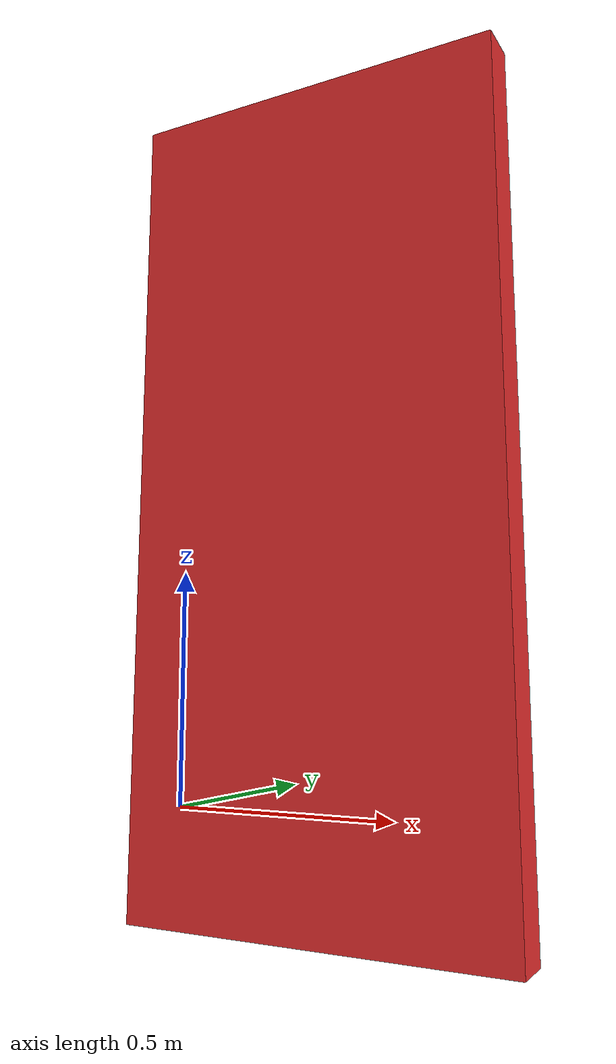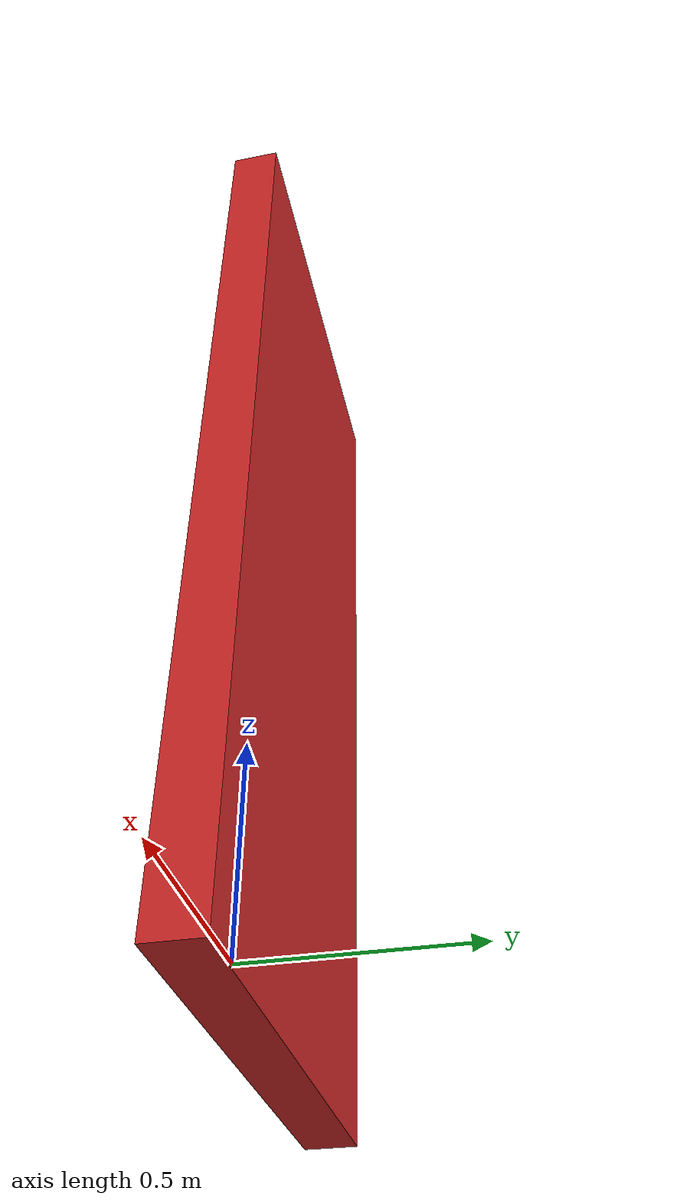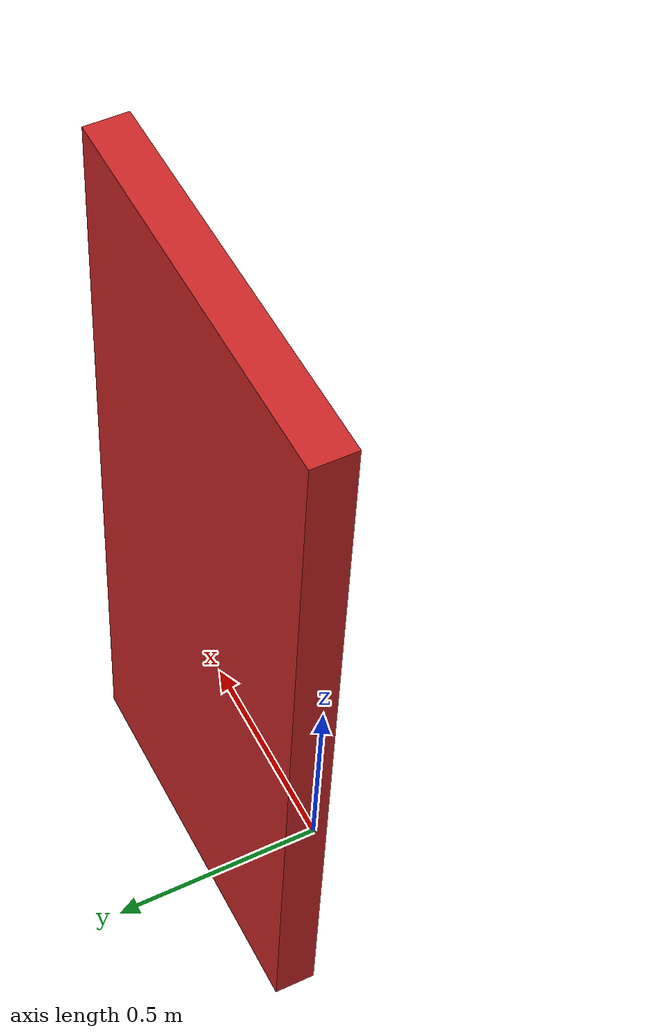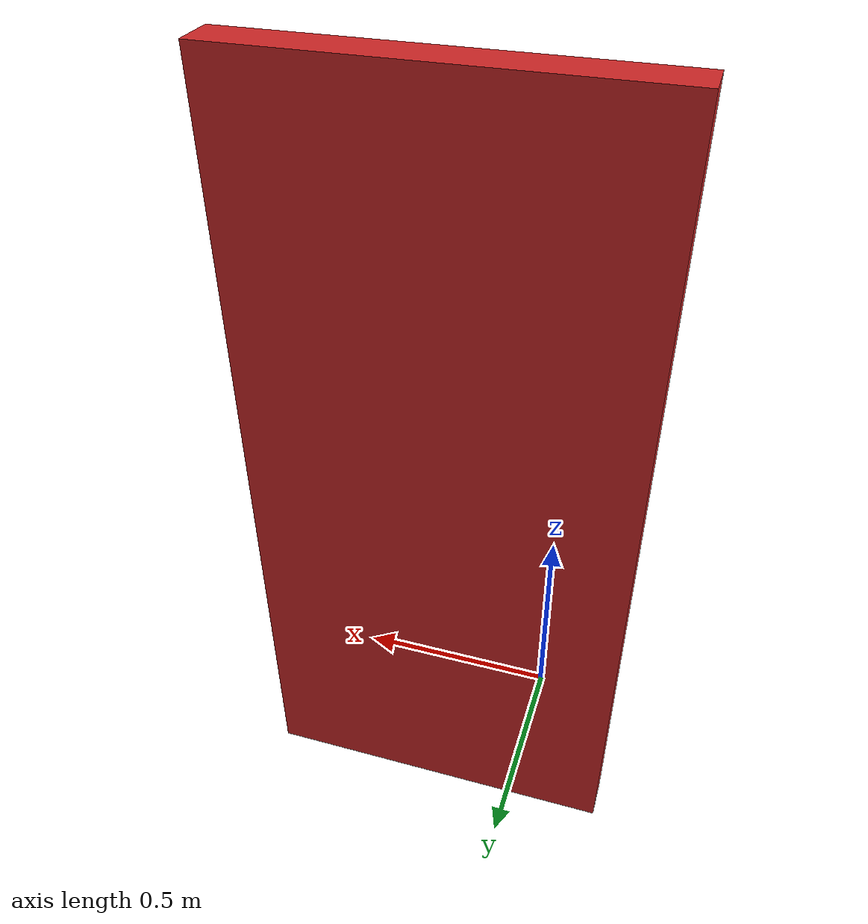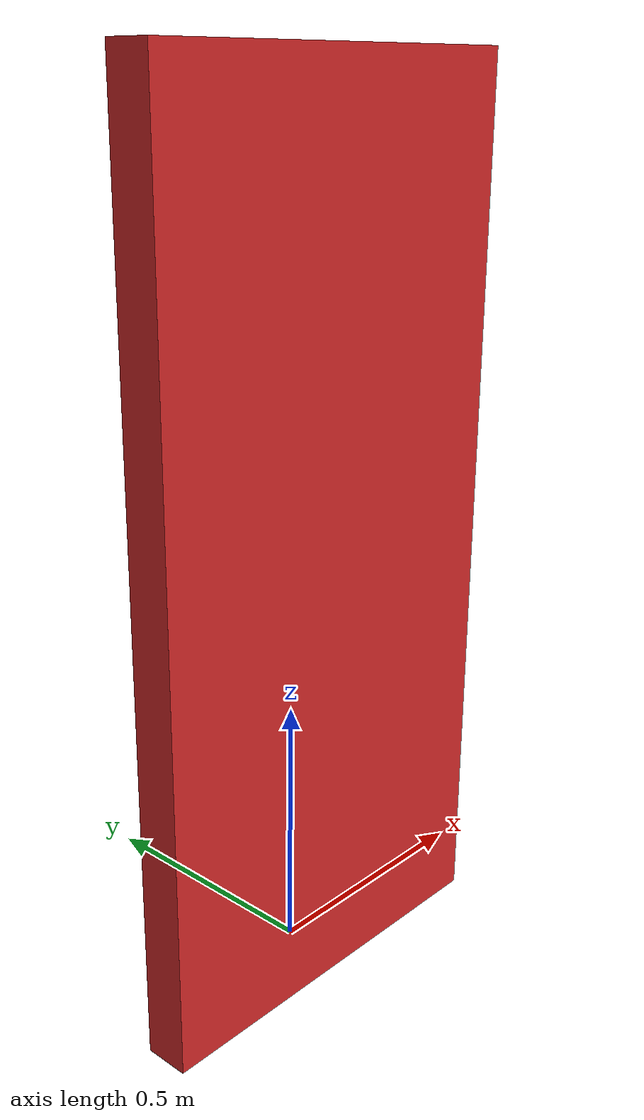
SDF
<sdf version='1.5'>
  <model name='Flip_Door'>

    <link name='hinge'>
      <pose>0 0 0 0 0 0</pose>
      <inertial>
        <pose>-0.05 0 0 0 0 0</pose>
        <mass>0.5</mass>
        <inertia>
          <ixx>1</ixx>
          <ixy>0</ixy>
          <ixz>0</ixz>
          <iyy>100</iyy>
          <iyz>0</iyz>
          <izz>1</izz>
        </inertia>
      </inertial>
      <velocity_decay>
        <linear>0</linear>
        <angular>0</angular>
      </velocity_decay>
    </link>

    <link name='door'>
      <pose>0.05 0.2 0.35 0 0 -1.57</pose>
      <inertial>
        <pose>0.05 0.2 0.35 0 0 -1.57</pose>
        <mass>5</mass>
        <inertia>
          <ixx>1</ixx>
          <ixy>0</ixy>
          <ixz>0</ixz>
          <iyy>100</iyy>
          <iyz>0</iyz>
          <izz>1</izz>
        </inertia>
      </inertial>
      <collision name='door_collision'>
        <pose>0.05 0.2 0.35 0 0 -1.57</pose>
        <geometry>
          <box>
            <size>0.927 0.1 1.96</size>
          </box>
        </geometry>
        <surface>
          <contact>
            <ode/>
          </contact>
          <friction>
            <ode/>
          </friction>
        </surface>
      </collision>
      <visual name='door_visual'>
        <pose>0.05 0.2 0.35 0 0 -1.57</pose>
        <geometry>
          <box>
            <size>0.927 0.1 1.96</size>
          </box>
        </geometry>
        <material>
          <script>
            <name>Gazebo/Red</name>
            <uri>__default__</uri>
          </script>
        </material>
      </visual>
      <gravity>1</gravity>
      <velocity_decay>
        <linear>0</linear>
        <angular>0</angular>
      </velocity_decay>
      <self_collide>0</self_collide>
    </link>

    <joint name='door_hinge' type='revolute'>
      <child>door</child>
      <parent>hinge</parent>
      <pose>0.01 0 0 0 0 0</pose>
      <axis>
        <xyz>0 0 1</xyz>
        <limit>
          <lower>0</lower>
          <upper>1.57</upper>
          <effort>0</effort>
          <velocity>10</velocity>
        </limit>
        <dynamics/>
      </axis>

    </joint>

    <joint name='floor_link' type='revolute'>
      <child>hinge</child>
      <parent>world</parent>
      <axis>
        <xyz>0 0 1</xyz>
        <limit>
          <lower>0</lower>
          <upper>0</upper>
          <effort>0</effort>
          <velocity>0</velocity>
        </limit>
        <dynamics/>
      </axis>
    </joint>

  <plugin name="door_plugin" filename="libdoor_plugin.so">
    <door_type>flip</door_type>
    <model_domain_space>door_</model_domain_space>
    <door_direction>counter_clockwise</door_direction>
  </plugin>

  </model>
</sdf>
